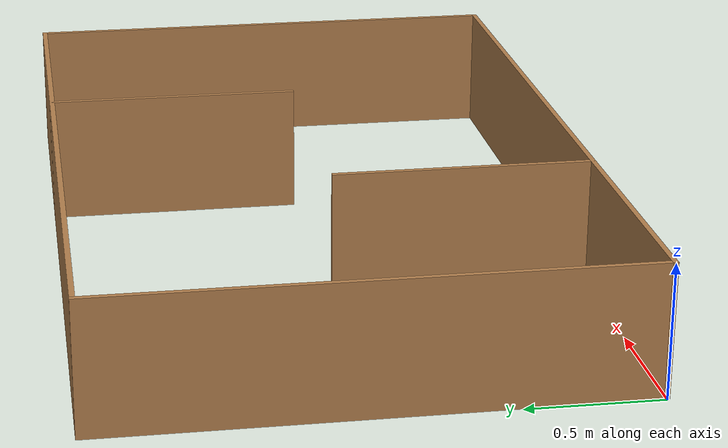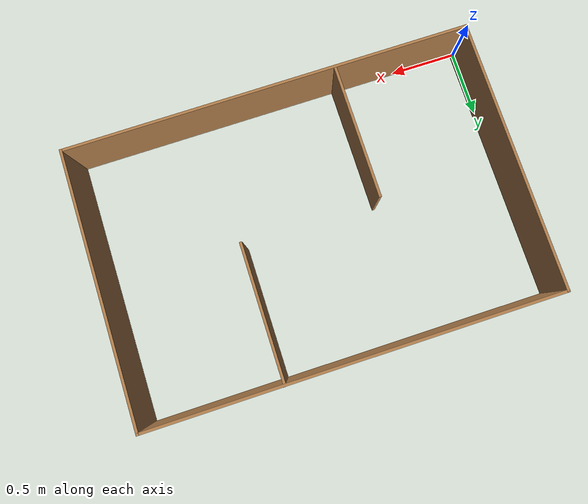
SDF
<?xml version='1.0'?>
<sdf version='1.6'>
  <model name='MotionS'>
    <pose frame=''>1.50477 0.988446 0 0 -0 0</pose>
    <link name='Wall_0'>
      <collision name='Wall_0_Collision'>
        <geometry>
          <box>
            <size>3 0.02 0.5</size>
          </box>
        </geometry>
        <pose frame=''>0 0 0.25 0 -0 0</pose>
      </collision>
      <visual name='Wall_0_Visual'>
        <pose frame=''>0 0 0.25 0 -0 0</pose>
        <geometry>
          <box>
            <size>3 0.02 0.5</size>
          </box>
        </geometry>
        <material>
          <script>
            <uri>file://media/materials/scripts/gazebo.material</uri>
            <name>Gazebo/Wood</name>
          </script>
          <ambient>1 1 1 1</ambient>
        </material>
        <meta>
          <layer>0</layer>
        </meta>
      </visual>
      <pose frame=''>0 -0.98994 0 0 -0 0</pose>
    </link>
    <link name='Wall_10'>
      <collision name='Wall_10_Collision'>
        <geometry>
          <box>
            <size>1 0.02 0.5</size>
          </box>
        </geometry>
        <pose frame=''>0 0 0.25 0 -0 0</pose>
      </collision>
      <visual name='Wall_10_Visual'>
        <pose frame=''>0 0 0.25 0 -0 0</pose>
        <geometry>
          <box>
            <size>1 0.02 0.5</size>
          </box>
        </geometry>
        <material>
          <script>
            <uri>file://media/materials/scripts/gazebo.material</uri>
            <name>Gazebo/Wood</name>
          </script>
          <ambient>1 1 1 1</ambient>
        </material>
        <meta>
          <layer>0</layer>
        </meta>
      </visual>
      <pose frame=''>0.494571 0.500305 0 0 -0 -1.5708</pose>
    </link>
    <link name='Wall_2'>
      <collision name='Wall_2_Collision'>
        <geometry>
          <box>
            <size>2 0.02 0.5</size>
          </box>
        </geometry>
        <pose frame=''>0 0 0.25 0 -0 0</pose>
      </collision>
      <visual name='Wall_2_Visual'>
        <pose frame=''>0 0 0.25 0 -0 0</pose>
        <geometry>
          <box>
            <size>2 0.02 0.5</size>
          </box>
        </geometry>
        <material>
          <script>
            <uri>file://media/materials/scripts/gazebo.material</uri>
            <name>Gazebo/Wood</name>
          </script>
          <ambient>1 1 1 1</ambient>
        </material>
        <meta>
          <layer>0</layer>
        </meta>
      </visual>
      <pose frame=''>-1.49 6e-05 0 0 -0 1.5708</pose>
    </link>
    <link name='Wall_4'>
      <collision name='Wall_4_Collision'>
        <geometry>
          <box>
            <size>3 0.02 0.5</size>
          </box>
        </geometry>
        <pose frame=''>0 0 0.25 0 -0 0</pose>
      </collision>
      <visual name='Wall_4_Visual'>
        <pose frame=''>0 0 0.25 0 -0 0</pose>
        <geometry>
          <box>
            <size>3 0.02 0.5</size>
          </box>
        </geometry>
        <material>
          <script>
            <uri>file://media/materials/scripts/gazebo.material</uri>
            <name>Gazebo/Wood</name>
          </script>
          <ambient>1 1 1 1</ambient>
        </material>
        <meta>
          <layer>0</layer>
        </meta>
      </visual>
      <pose frame=''>0 0.99006 0 0 -0 0</pose>
    </link>
    <link name='Wall_6'>
      <collision name='Wall_6_Collision'>
        <geometry>
          <box>
            <size>2 0.02 0.5</size>
          </box>
        </geometry>
        <pose frame=''>0 0 0.25 0 -0 0</pose>
      </collision>
      <visual name='Wall_6_Visual'>
        <pose frame=''>0 0 0.25 0 -0 0</pose>
        <geometry>
          <box>
            <size>2 0.02 0.5</size>
          </box>
        </geometry>
        <material>
          <script>
            <uri>file://media/materials/scripts/gazebo.material</uri>
            <name>Gazebo/Wood</name>
          </script>
          <ambient>1 1 1 1</ambient>
        </material>
        <meta>
          <layer>0</layer>
        </meta>
      </visual>
      <pose frame=''>1.49 6e-05 0 0 -0 -1.5708</pose>
    </link>
    <link name='Wall_8'>
      <collision name='Wall_8_Collision'>
        <geometry>
          <box>
            <size>1 0.02 0.5</size>
          </box>
        </geometry>
        <pose frame=''>0 0 0.25 0 -0 0</pose>
      </collision>
      <visual name='Wall_8_Visual'>
        <pose frame=''>0 0 0.25 0 -0 0</pose>
        <geometry>
          <box>
            <size>1 0.02 0.5</size>
          </box>
        </geometry>
        <material>
          <script>
            <uri>file://media/materials/scripts/gazebo.material</uri>
            <name>Gazebo/Wood</name>
          </script>
          <ambient>1 1 1 1</ambient>
        </material>
        <meta>
          <layer>0</layer>
        </meta>
      </visual>
      <pose frame=''>-0.505026 -0.500305 0 0 -0 -1.5708</pose>
    </link>
    <static>1</static>
  </model>
</sdf>
